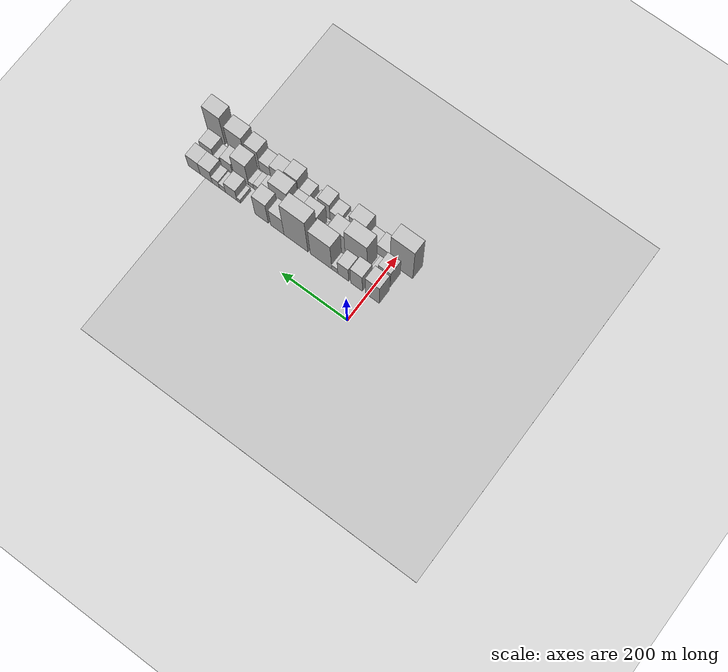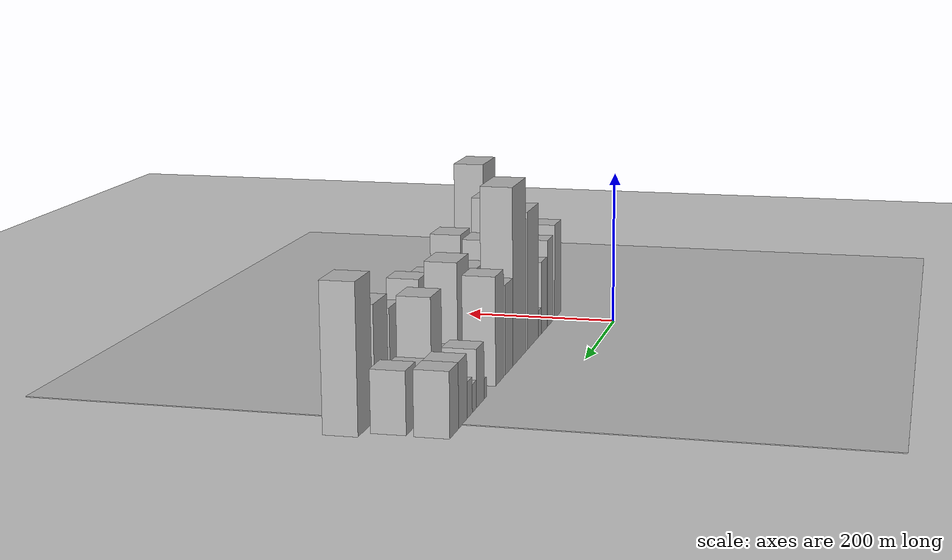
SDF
<sdf version="1.6">
 <world name="default">
  <include><name>ground_plane_1</name><uri>model://HANNAS_ground_plane</uri></include>
  <include>
   <name>ground_plane_2</name>
   <uri>model://HANNAS_ground_plane</uri>
   <pose>100 0 0  0 0 0</pose>
  </include>
  <model name="building_15">
   <static>1</static>
   <pose>100.0000 -14.3480 0 0.000000 0.000000 0.000000</pose>
   <link name="link">
    <pose>0 0 64.50 0 0 0</pose>
    <collision name="collision"><geometry><box><size>40.0000 42.0374 129.0000</size></box></geometry></collision>
    <visual name="visual">
     <cast_shadows>0</cast_shadows>
     <geometry><box><size>40.0000 42.0374 129.0000</size></box></geometry>
     <material>
      <script>
       <uri>model://HANNAS_wall/materials/scripts</uri>
       <uri>model://HANNAS_wall/materials/textures</uri>
       <name>vrc/HANNAS_wall</name>
      </script>
     </material>
    </visual>
   </link>
  </model>
  <model name="building_16">
   <static>1</static>
   <pose>100.0000 33.4773 0 0.000000 0.000000 0.000000</pose>
   <link name="link">
    <pose>0 0 58.50 0 0 0</pose>
    <collision name="collision"><geometry><box><size>40.0000 35.6132 117.0000</size></box></geometry></collision>
    <visual name="visual">
     <cast_shadows>0</cast_shadows>
     <geometry><box><size>40.0000 35.6132 117.0000</size></box></geometry>
     <material>
      <script>
       <uri>model://HANNAS_wall/materials/scripts</uri>
       <uri>model://HANNAS_wall/materials/textures</uri>
       <name>vrc/HANNAS_wall</name>
      </script>
     </material>
    </visual>
   </link>
  </model>
  <model name="building_17">
   <static>1</static>
   <pose>100.0000 73.7126 0 0.000000 0.000000 0.000000</pose>
   <link name="link">
    <pose>0 0 48.00 0 0 0</pose>
    <collision name="collision"><geometry><box><size>40.0000 32.8575 96.0000</size></box></geometry></collision>
    <visual name="visual">
     <cast_shadows>0</cast_shadows>
     <geometry><box><size>40.0000 32.8575 96.0000</size></box></geometry>
     <material>
      <script>
       <uri>model://HANNAS_wall/materials/scripts</uri>
       <uri>model://HANNAS_wall/materials/textures</uri>
       <name>vrc/HANNAS_wall</name>
      </script>
     </material>
    </visual>
   </link>
  </model>
  <model name="building_18">
   <static>1</static>
   <pose>100.0000 99.3036 0 0.000000 0.000000 0.000000</pose>
   <link name="link">
    <pose>0 0 18.00 0 0 0</pose>
    <collision name="collision"><geometry><box><size>40.0000 18.3245 36.0000</size></box></geometry></collision>
    <visual name="visual">
     <cast_shadows>0</cast_shadows>
     <geometry><box><size>40.0000 18.3245 36.0000</size></box></geometry>
     <material>
      <script>
       <uri>model://HANNAS_wall/materials/scripts</uri>
       <uri>model://HANNAS_wall/materials/textures</uri>
       <name>vrc/HANNAS_wall</name>
      </script>
     </material>
    </visual>
   </link>
  </model>
  <model name="building_19">
   <static>1</static>
   <pose>100.0000 141.2515 0 0.000000 0.000000 0.000000</pose>
   <link name="link">
    <pose>0 0 88.50 0 0 0</pose>
    <collision name="collision"><geometry><box><size>40.0000 65.5714 177.0000</size></box></geometry></collision>
    <visual name="visual">
     <cast_shadows>0</cast_shadows>
     <geometry><box><size>40.0000 65.5714 177.0000</size></box></geometry>
     <material>
      <script>
       <uri>model://HANNAS_wall/materials/scripts</uri>
       <uri>model://HANNAS_wall/materials/textures</uri>
       <name>vrc/HANNAS_wall</name>
      </script>
     </material>
    </visual>
   </link>
  </model>
  <model name="building_20">
   <static>1</static>
   <pose>100.0000 217.8878 0 0.000000 0.000000 0.000000</pose>
   <link name="link">
    <pose>0 0 111.00 0 0 0</pose>
    <collision name="collision"><geometry><box><size>40.0000 73.7011 222.0000</size></box></geometry></collision>
    <visual name="visual">
     <cast_shadows>0</cast_shadows>
     <geometry><box><size>40.0000 73.7011 222.0000</size></box></geometry>
     <material>
      <script>
       <uri>model://HANNAS_wall/materials/scripts</uri>
       <uri>model://HANNAS_wall/materials/textures</uri>
       <name>vrc/HANNAS_wall</name>
      </script>
     </material>
    </visual>
   </link>
  </model>
  <model name="building_21">
   <static>1</static>
   <pose>100.0000 275.3792 0 0.000000 0.000000 0.000000</pose>
   <link name="link">
    <pose>0 0 55.50 0 0 0</pose>
    <collision name="collision"><geometry><box><size>40.0000 41.2819 111.0000</size></box></geometry></collision>
    <visual name="visual">
     <cast_shadows>0</cast_shadows>
     <geometry><box><size>40.0000 41.2819 111.0000</size></box></geometry>
     <material>
      <script>
       <uri>model://HANNAS_wall/materials/scripts</uri>
       <uri>model://HANNAS_wall/materials/textures</uri>
       <name>vrc/HANNAS_wall</name>
      </script>
     </material>
    </visual>
   </link>
  </model>
  <model name="building_22">
   <static>1</static>
   <pose>100.0000 323.8332 0 0.000000 0.000000 0.000000</pose>
   <link name="link">
    <pose>0 0 66.00 0 0 0</pose>
    <collision name="collision"><geometry><box><size>40.0000 41.6261 132.0000</size></box></geometry></collision>
    <visual name="visual">
     <cast_shadows>0</cast_shadows>
     <geometry><box><size>40.0000 41.6261 132.0000</size></box></geometry>
     <material>
      <script>
       <uri>model://HANNAS_wall/materials/scripts</uri>
       <uri>model://HANNAS_wall/materials/textures</uri>
       <name>vrc/HANNAS_wall</name>
      </script>
     </material>
    </visual>
   </link>
  </model>
  <model name="building_23">
   <static>1</static>
   <pose>100.0000 394.9976 0 0.000000 0.000000 0.000000</pose>
   <link name="link">
    <pose>0 0 12.00 0 0 0</pose>
    <collision name="collision"><geometry><box><size>40.0000 11.5676 24.0000</size></box></geometry></collision>
    <visual name="visual">
     <cast_shadows>0</cast_shadows>
     <geometry><box><size>40.0000 11.5676 24.0000</size></box></geometry>
     <material>
      <script>
       <uri>model://HANNAS_wall/materials/scripts</uri>
       <uri>model://HANNAS_wall/materials/textures</uri>
       <name>vrc/HANNAS_wall</name>
      </script>
     </material>
    </visual>
   </link>
  </model>
  <model name="building_24">
   <static>1</static>
   <pose>100.0000 418.7170 0 0.000000 0.000000 0.000000</pose>
   <link name="link">
    <pose>0 0 34.50 0 0 0</pose>
    <collision name="collision"><geometry><box><size>40.0000 35.8713 69.0000</size></box></geometry></collision>
    <visual name="visual">
     <cast_shadows>0</cast_shadows>
     <geometry><box><size>40.0000 35.8713 69.0000</size></box></geometry>
     <material>
      <script>
       <uri>model://HANNAS_wall/materials/scripts</uri>
       <uri>model://HANNAS_wall/materials/textures</uri>
       <name>vrc/HANNAS_wall</name>
      </script>
     </material>
    </visual>
   </link>
  </model>
  <model name="building_25">
   <static>1</static>
   <pose>100.0000 446.3657 0 0.000000 0.000000 0.000000</pose>
   <link name="link">
    <pose>0 0 16.50 0 0 0</pose>
    <collision name="collision"><geometry><box><size>40.0000 19.4260 33.0000</size></box></geometry></collision>
    <visual name="visual">
     <cast_shadows>0</cast_shadows>
     <geometry><box><size>40.0000 19.4260 33.0000</size></box></geometry>
     <material>
      <script>
       <uri>model://HANNAS_wall/materials/scripts</uri>
       <uri>model://HANNAS_wall/materials/textures</uri>
       <name>vrc/HANNAS_wall</name>
      </script>
     </material>
    </visual>
   </link>
  </model>
  <model name="building_26">
   <static>1</static>
   <pose>100.0000 467.3186 0 0.000000 0.000000 0.000000</pose>
   <link name="link">
    <pose>0 0 21.00 0 0 0</pose>
    <collision name="collision"><geometry><box><size>40.0000 22.4799 42.0000</size></box></geometry></collision>
    <visual name="visual">
     <cast_shadows>0</cast_shadows>
     <geometry><box><size>40.0000 22.4799 42.0000</size></box></geometry>
     <material>
      <script>
       <uri>model://HANNAS_wall/materials/scripts</uri>
       <uri>model://HANNAS_wall/materials/textures</uri>
       <name>vrc/HANNAS_wall</name>
      </script>
     </material>
    </visual>
   </link>
  </model>
  <model name="building_27">
   <static>1</static>
   <pose>100.0000 497.3956 0 0.000000 0.000000 0.000000</pose>
   <link name="link">
    <pose>0 0 37.50 0 0 0</pose>
    <collision name="collision"><geometry><box><size>40.0000 37.6741 75.0000</size></box></geometry></collision>
    <visual name="visual">
     <cast_shadows>0</cast_shadows>
     <geometry><box><size>40.0000 37.6741 75.0000</size></box></geometry>
     <material>
      <script>
       <uri>model://HANNAS_wall/materials/scripts</uri>
       <uri>model://HANNAS_wall/materials/textures</uri>
       <name>vrc/HANNAS_wall</name>
      </script>
     </material>
    </visual>
   </link>
  </model>
  <model name="building_28">
   <static>1</static>
   <pose>100.0000 535.1315 0 0.000000 0.000000 0.000000</pose>
   <link name="link">
    <pose>0 0 37.50 0 0 0</pose>
    <collision name="collision"><geometry><box><size>40.0000 37.7977 75.0000</size></box></geometry></collision>
    <visual name="visual">
     <cast_shadows>0</cast_shadows>
     <geometry><box><size>40.0000 37.7977 75.0000</size></box></geometry>
     <material>
      <script>
       <uri>model://HANNAS_wall/materials/scripts</uri>
       <uri>model://HANNAS_wall/materials/textures</uri>
       <name>vrc/HANNAS_wall</name>
      </script>
     </material>
    </visual>
   </link>
  </model>
  <model name="building_42">
   <static>1</static>
   <pose>149.0000 -13.1731 0 0.000000 0.000000 0.000000</pose>
   <link name="link">
    <pose>0 0 55.50 0 0 0</pose>
    <collision name="collision"><geometry><box><size>40.0000 37.3592 111.0000</size></box></geometry></collision>
    <visual name="visual">
     <cast_shadows>0</cast_shadows>
     <geometry><box><size>40.0000 37.3592 111.0000</size></box></geometry>
     <material>
      <script>
       <uri>model://HANNAS_wall/materials/scripts</uri>
       <uri>model://HANNAS_wall/materials/textures</uri>
       <name>vrc/HANNAS_wall</name>
      </script>
     </material>
    </visual>
   </link>
  </model>
  <model name="building_43">
   <static>1</static>
   <pose>149.0000 16.8744 0 0.000000 0.000000 0.000000</pose>
   <link name="link">
    <pose>0 0 19.50 0 0 0</pose>
    <collision name="collision"><geometry><box><size>40.0000 22.7358 39.0000</size></box></geometry></collision>
    <visual name="visual">
     <cast_shadows>0</cast_shadows>
     <geometry><box><size>40.0000 22.7358 39.0000</size></box></geometry>
     <material>
      <script>
       <uri>model://HANNAS_wall/materials/scripts</uri>
       <uri>model://HANNAS_wall/materials/textures</uri>
       <name>vrc/HANNAS_wall</name>
      </script>
     </material>
    </visual>
   </link>
  </model>
  <model name="building_44">
   <static>1</static>
   <pose>149.0000 71.7519 0 0.000000 0.000000 0.000000</pose>
   <link name="link">
    <pose>0 0 90.00 0 0 0</pose>
    <collision name="collision"><geometry><box><size>40.0000 67.0192 180.0000</size></box></geometry></collision>
    <visual name="visual">
     <cast_shadows>0</cast_shadows>
     <geometry><box><size>40.0000 67.0192 180.0000</size></box></geometry>
     <material>
      <script>
       <uri>model://HANNAS_wall/materials/scripts</uri>
       <uri>model://HANNAS_wall/materials/textures</uri>
       <name>vrc/HANNAS_wall</name>
      </script>
     </material>
    </visual>
   </link>
  </model>
  <model name="building_45">
   <static>1</static>
   <pose>149.0000 129.6955 0 0.000000 0.000000 0.000000</pose>
   <link name="link">
    <pose>0 0 67.50 0 0 0</pose>
    <collision name="collision"><geometry><box><size>40.0000 48.8680 135.0000</size></box></geometry></collision>
    <visual name="visual">
     <cast_shadows>0</cast_shadows>
     <geometry><box><size>40.0000 48.8680 135.0000</size></box></geometry>
     <material>
      <script>
       <uri>model://HANNAS_wall/materials/scripts</uri>
       <uri>model://HANNAS_wall/materials/textures</uri>
       <name>vrc/HANNAS_wall</name>
      </script>
     </material>
    </visual>
   </link>
  </model>
  <model name="building_46">
   <static>1</static>
   <pose>149.0000 167.6514 0 0.000000 0.000000 0.000000</pose>
   <link name="link">
    <pose>0 0 18.00 0 0 0</pose>
    <collision name="collision"><geometry><box><size>40.0000 19.0437 36.0000</size></box></geometry></collision>
    <visual name="visual">
     <cast_shadows>0</cast_shadows>
     <geometry><box><size>40.0000 19.0437 36.0000</size></box></geometry>
     <material>
      <script>
       <uri>model://HANNAS_wall/materials/scripts</uri>
       <uri>model://HANNAS_wall/materials/textures</uri>
       <name>vrc/HANNAS_wall</name>
      </script>
     </material>
    </visual>
   </link>
  </model>
  <model name="building_47">
   <static>1</static>
   <pose>149.0000 180.9739 0 0.000000 0.000000 0.000000</pose>
   <link name="link">
    <pose>0 0 9.00 0 0 0</pose>
    <collision name="collision"><geometry><box><size>40.0000 7.6014 18.0000</size></box></geometry></collision>
    <visual name="visual">
     <cast_shadows>0</cast_shadows>
     <geometry><box><size>40.0000 7.6014 18.0000</size></box></geometry>
     <material>
      <script>
       <uri>model://HANNAS_wall/materials/scripts</uri>
       <uri>model://HANNAS_wall/materials/textures</uri>
       <name>vrc/HANNAS_wall</name>
      </script>
     </material>
    </visual>
   </link>
  </model>
  <model name="building_48">
   <static>1</static>
   <pose>149.0000 214.1277 0 0.000000 0.000000 0.000000</pose>
   <link name="link">
    <pose>0 0 58.50 0 0 0</pose>
    <collision name="collision"><geometry><box><size>40.0000 46.7060 117.0000</size></box></geometry></collision>
    <visual name="visual">
     <cast_shadows>0</cast_shadows>
     <geometry><box><size>40.0000 46.7060 117.0000</size></box></geometry>
     <material>
      <script>
       <uri>model://HANNAS_wall/materials/scripts</uri>
       <uri>model://HANNAS_wall/materials/textures</uri>
       <name>vrc/HANNAS_wall</name>
      </script>
     </material>
    </visual>
   </link>
  </model>
  <model name="building_49">
   <static>1</static>
   <pose>149.0000 255.0608 0 0.000000 0.000000 0.000000</pose>
   <link name="link">
    <pose>0 0 54.00 0 0 0</pose>
    <collision name="collision"><geometry><box><size>40.0000 35.1603 108.0000</size></box></geometry></collision>
    <visual name="visual">
     <cast_shadows>0</cast_shadows>
     <geometry><box><size>40.0000 35.1603 108.0000</size></box></geometry>
     <material>
      <script>
       <uri>model://HANNAS_wall/materials/scripts</uri>
       <uri>model://HANNAS_wall/materials/textures</uri>
       <name>vrc/HANNAS_wall</name>
      </script>
     </material>
    </visual>
   </link>
  </model>
  <model name="building_50">
   <static>1</static>
   <pose>149.0000 305.0696 0 0.000000 0.000000 0.000000</pose>
   <link name="link">
    <pose>0 0 72.00 0 0 0</pose>
    <collision name="collision"><geometry><box><size>40.0000 54.8574 144.0000</size></box></geometry></collision>
    <visual name="visual">
     <cast_shadows>0</cast_shadows>
     <geometry><box><size>40.0000 54.8574 144.0000</size></box></geometry>
     <material>
      <script>
       <uri>model://HANNAS_wall/materials/scripts</uri>
       <uri>model://HANNAS_wall/materials/textures</uri>
       <name>vrc/HANNAS_wall</name>
      </script>
     </material>
    </visual>
   </link>
  </model>
  <model name="building_51">
   <static>1</static>
   <pose>149.0000 354.5648 0 0.000000 0.000000 0.000000</pose>
   <link name="link">
    <pose>0 0 24.00 0 0 0</pose>
    <collision name="collision"><geometry><box><size>40.0000 28.1330 48.0000</size></box></geometry></collision>
    <visual name="visual">
     <cast_shadows>0</cast_shadows>
     <geometry><box><size>40.0000 28.1330 48.0000</size></box></geometry>
     <material>
      <script>
       <uri>model://HANNAS_wall/materials/scripts</uri>
       <uri>model://HANNAS_wall/materials/textures</uri>
       <name>vrc/HANNAS_wall</name>
      </script>
     </material>
    </visual>
   </link>
  </model>
  <model name="building_52">
   <static>1</static>
   <pose>149.0000 377.9350 0 0.000000 0.000000 0.000000</pose>
   <link name="link">
    <pose>0 0 18.00 0 0 0</pose>
    <collision name="collision"><geometry><box><size>40.0000 18.6073 36.0000</size></box></geometry></collision>
    <visual name="visual">
     <cast_shadows>0</cast_shadows>
     <geometry><box><size>40.0000 18.6073 36.0000</size></box></geometry>
     <material>
      <script>
       <uri>model://HANNAS_wall/materials/scripts</uri>
       <uri>model://HANNAS_wall/materials/textures</uri>
       <name>vrc/HANNAS_wall</name>
      </script>
     </material>
    </visual>
   </link>
  </model>
  <model name="building_53">
   <static>1</static>
   <pose>149.0000 395.2070 0 0.000000 0.000000 0.000000</pose>
   <link name="link">
    <pose>0 0 15.00 0 0 0</pose>
    <collision name="collision"><geometry><box><size>40.0000 15.9366 30.0000</size></box></geometry></collision>
    <visual name="visual">
     <cast_shadows>0</cast_shadows>
     <geometry><box><size>40.0000 15.9366 30.0000</size></box></geometry>
     <material>
      <script>
       <uri>model://HANNAS_wall/materials/scripts</uri>
       <uri>model://HANNAS_wall/materials/textures</uri>
       <name>vrc/HANNAS_wall</name>
      </script>
     </material>
    </visual>
   </link>
  </model>
  <model name="building_54">
   <static>1</static>
   <pose>149.0000 426.0396 0 0.000000 0.000000 0.000000</pose>
   <link name="link">
    <pose>0 0 64.50 0 0 0</pose>
    <collision name="collision"><geometry><box><size>40.0000 45.7287 129.0000</size></box></geometry></collision>
    <visual name="visual">
     <cast_shadows>0</cast_shadows>
     <geometry><box><size>40.0000 45.7287 129.0000</size></box></geometry>
     <material>
      <script>
       <uri>model://HANNAS_wall/materials/scripts</uri>
       <uri>model://HANNAS_wall/materials/textures</uri>
       <name>vrc/HANNAS_wall</name>
      </script>
     </material>
    </visual>
   </link>
  </model>
  <model name="building_55">
   <static>1</static>
   <pose>149.0000 470.8617 0 0.000000 0.000000 0.000000</pose>
   <link name="link">
    <pose>0 0 30.00 0 0 0</pose>
    <collision name="collision"><geometry><box><size>40.0000 33.9155 60.0000</size></box></geometry></collision>
    <visual name="visual">
     <cast_shadows>0</cast_shadows>
     <geometry><box><size>40.0000 33.9155 60.0000</size></box></geometry>
     <material>
      <script>
       <uri>model://HANNAS_wall/materials/scripts</uri>
       <uri>model://HANNAS_wall/materials/textures</uri>
       <name>vrc/HANNAS_wall</name>
      </script>
     </material>
    </visual>
   </link>
  </model>
  <model name="building_56">
   <static>1</static>
   <pose>149.0000 504.5062 0 0.000000 0.000000 0.000000</pose>
   <link name="link">
    <pose>0 0 15.00 0 0 0</pose>
    <collision name="collision"><geometry><box><size>40.0000 15.3734 30.0000</size></box></geometry></collision>
    <visual name="visual">
     <cast_shadows>0</cast_shadows>
     <geometry><box><size>40.0000 15.3734 30.0000</size></box></geometry>
     <material>
      <script>
       <uri>model://HANNAS_wall/materials/scripts</uri>
       <uri>model://HANNAS_wall/materials/textures</uri>
       <name>vrc/HANNAS_wall</name>
      </script>
     </material>
    </visual>
   </link>
  </model>
  <model name="building_57">
   <static>1</static>
   <pose>149.0000 532.1207 0 0.000000 0.000000 0.000000</pose>
   <link name="link">
    <pose>0 0 36.00 0 0 0</pose>
    <collision name="collision"><geometry><box><size>40.0000 39.8557 72.0000</size></box></geometry></collision>
    <visual name="visual">
     <cast_shadows>0</cast_shadows>
     <geometry><box><size>40.0000 39.8557 72.0000</size></box></geometry>
     <material>
      <script>
       <uri>model://HANNAS_wall/materials/scripts</uri>
       <uri>model://HANNAS_wall/materials/textures</uri>
       <name>vrc/HANNAS_wall</name>
      </script>
     </material>
    </visual>
   </link>
  </model>
  <model name="building_77">
   <static>1</static>
   <pose>198.0000 -28.6502 0 0.000000 0.000000 0.000000</pose>
   <link name="link">
    <pose>0 0 103.50 0 0 0</pose>
    <collision name="collision"><geometry><box><size>40.0000 68.6095 207.0000</size></box></geometry></collision>
    <visual name="visual">
     <cast_shadows>0</cast_shadows>
     <geometry><box><size>40.0000 68.6095 207.0000</size></box></geometry>
     <material>
      <script>
       <uri>model://HANNAS_wall/materials/scripts</uri>
       <uri>model://HANNAS_wall/materials/textures</uri>
       <name>vrc/HANNAS_wall</name>
      </script>
     </material>
    </visual>
   </link>
  </model>
  <model name="building_78">
   <static>1</static>
   <pose>198.0000 25.9451 0 0.000000 0.000000 0.000000</pose>
   <link name="link">
    <pose>0 0 34.50 0 0 0</pose>
    <collision name="collision"><geometry><box><size>40.0000 40.5810 69.0000</size></box></geometry></collision>
    <visual name="visual">
     <cast_shadows>0</cast_shadows>
     <geometry><box><size>40.0000 40.5810 69.0000</size></box></geometry>
     <material>
      <script>
       <uri>model://HANNAS_wall/materials/scripts</uri>
       <uri>model://HANNAS_wall/materials/textures</uri>
       <name>vrc/HANNAS_wall</name>
      </script>
     </material>
    </visual>
   </link>
  </model>
  <model name="building_79">
   <static>1</static>
   <pose>198.0000 62.6941 0 0.000000 0.000000 0.000000</pose>
   <link name="link">
    <pose>0 0 28.50 0 0 0</pose>
    <collision name="collision"><geometry><box><size>40.0000 32.9170 57.0000</size></box></geometry></collision>
    <visual name="visual">
     <cast_shadows>0</cast_shadows>
     <geometry><box><size>40.0000 32.9170 57.0000</size></box></geometry>
     <material>
      <script>
       <uri>model://HANNAS_wall/materials/scripts</uri>
       <uri>model://HANNAS_wall/materials/textures</uri>
       <name>vrc/HANNAS_wall</name>
      </script>
     </material>
    </visual>
   </link>
  </model>
  <model name="building_80">
   <static>1</static>
   <pose>198.0000 103.7721 0 0.000000 0.000000 0.000000</pose>
   <link name="link">
    <pose>0 0 67.50 0 0 0</pose>
    <collision name="collision"><geometry><box><size>40.0000 49.2389 135.0000</size></box></geometry></collision>
    <visual name="visual">
     <cast_shadows>0</cast_shadows>
     <geometry><box><size>40.0000 49.2389 135.0000</size></box></geometry>
     <material>
      <script>
       <uri>model://HANNAS_wall/materials/scripts</uri>
       <uri>model://HANNAS_wall/materials/textures</uri>
       <name>vrc/HANNAS_wall</name>
      </script>
     </material>
    </visual>
   </link>
  </model>
  <model name="building_81">
   <static>1</static>
   <pose>198.0000 145.4336 0 0.000000 0.000000 0.000000</pose>
   <link name="link">
    <pose>0 0 16.50 0 0 0</pose>
    <collision name="collision"><geometry><box><size>40.0000 18.0842 33.0000</size></box></geometry></collision>
    <visual name="visual">
     <cast_shadows>0</cast_shadows>
     <geometry><box><size>40.0000 18.0842 33.0000</size></box></geometry>
     <material>
      <script>
       <uri>model://HANNAS_wall/materials/scripts</uri>
       <uri>model://HANNAS_wall/materials/textures</uri>
       <name>vrc/HANNAS_wall</name>
      </script>
     </material>
    </visual>
   </link>
  </model>
  <model name="building_82">
   <static>1</static>
   <pose>198.0000 171.2136 0 0.000000 0.000000 0.000000</pose>
   <link name="link">
    <pose>0 0 33.00 0 0 0</pose>
    <collision name="collision"><geometry><box><size>40.0000 33.4758 66.0000</size></box></geometry></collision>
    <visual name="visual">
     <cast_shadows>0</cast_shadows>
     <geometry><box><size>40.0000 33.4758 66.0000</size></box></geometry>
     <material>
      <script>
       <uri>model://HANNAS_wall/materials/scripts</uri>
       <uri>model://HANNAS_wall/materials/textures</uri>
       <name>vrc/HANNAS_wall</name>
      </script>
     </material>
    </visual>
   </link>
  </model>
  <model name="building_83">
   <static>1</static>
   <pose>198.0000 205.5938 0 0.000000 0.000000 0.000000</pose>
   <link name="link">
    <pose>0 0 52.50 0 0 0</pose>
    <collision name="collision"><geometry><box><size>40.0000 35.2846 105.0000</size></box></geometry></collision>
    <visual name="visual">
     <cast_shadows>0</cast_shadows>
     <geometry><box><size>40.0000 35.2846 105.0000</size></box></geometry>
     <material>
      <script>
       <uri>model://HANNAS_wall/materials/scripts</uri>
       <uri>model://HANNAS_wall/materials/textures</uri>
       <name>vrc/HANNAS_wall</name>
      </script>
     </material>
    </visual>
   </link>
  </model>
  <model name="building_84">
   <static>1</static>
   <pose>198.0000 233.7788 0 0.000000 0.000000 0.000000</pose>
   <link name="link">
    <pose>0 0 18.00 0 0 0</pose>
    <collision name="collision"><geometry><box><size>40.0000 21.0855 36.0000</size></box></geometry></collision>
    <visual name="visual">
     <cast_shadows>0</cast_shadows>
     <geometry><box><size>40.0000 21.0855 36.0000</size></box></geometry>
     <material>
      <script>
       <uri>model://HANNAS_wall/materials/scripts</uri>
       <uri>model://HANNAS_wall/materials/textures</uri>
       <name>vrc/HANNAS_wall</name>
      </script>
     </material>
    </visual>
   </link>
  </model>
  <model name="building_85">
   <static>1</static>
   <pose>198.0000 268.3736 0 0.000000 0.000000 0.000000</pose>
   <link name="link">
    <pose>0 0 27.00 0 0 0</pose>
    <collision name="collision"><geometry><box><size>40.0000 32.1041 54.0000</size></box></geometry></collision>
    <visual name="visual">
     <cast_shadows>0</cast_shadows>
     <geometry><box><size>40.0000 32.1041 54.0000</size></box></geometry>
     <material>
      <script>
       <uri>model://HANNAS_wall/materials/scripts</uri>
       <uri>model://HANNAS_wall/materials/textures</uri>
       <name>vrc/HANNAS_wall</name>
      </script>
     </material>
    </visual>
   </link>
  </model>
  <model name="building_86">
   <static>1</static>
   <pose>198.0000 304.4488 0 0.000000 0.000000 0.000000</pose>
   <link name="link">
    <pose>0 0 60.00 0 0 0</pose>
    <collision name="collision"><geometry><box><size>40.0000 40.0464 120.0000</size></box></geometry></collision>
    <visual name="visual">
     <cast_shadows>0</cast_shadows>
     <geometry><box><size>40.0000 40.0464 120.0000</size></box></geometry>
     <material>
      <script>
       <uri>model://HANNAS_wall/materials/scripts</uri>
       <uri>model://HANNAS_wall/materials/textures</uri>
       <name>vrc/HANNAS_wall</name>
      </script>
     </material>
    </visual>
   </link>
  </model>
  <model name="building_87">
   <static>1</static>
   <pose>198.0000 348.1931 0 0.000000 0.000000 0.000000</pose>
   <link name="link">
    <pose>0 0 40.50 0 0 0</pose>
    <collision name="collision"><geometry><box><size>40.0000 47.4421 81.0000</size></box></geometry></collision>
    <visual name="visual">
     <cast_shadows>0</cast_shadows>
     <geometry><box><size>40.0000 47.4421 81.0000</size></box></geometry>
     <material>
      <script>
       <uri>model://HANNAS_wall/materials/scripts</uri>
       <uri>model://HANNAS_wall/materials/textures</uri>
       <name>vrc/HANNAS_wall</name>
      </script>
     </material>
    </visual>
   </link>
  </model>
  <model name="building_88">
   <static>1</static>
   <pose>198.0000 389.4677 0 0.000000 0.000000 0.000000</pose>
   <link name="link">
    <pose>0 0 31.50 0 0 0</pose>
    <collision name="collision"><geometry><box><size>40.0000 35.1073 63.0000</size></box></geometry></collision>
    <visual name="visual">
     <cast_shadows>0</cast_shadows>
     <geometry><box><size>40.0000 35.1073 63.0000</size></box></geometry>
     <material>
      <script>
       <uri>model://HANNAS_wall/materials/scripts</uri>
       <uri>model://HANNAS_wall/materials/textures</uri>
       <name>vrc/HANNAS_wall</name>
      </script>
     </material>
    </visual>
   </link>
  </model>
  <model name="building_89">
   <static>1</static>
   <pose>198.0000 426.8065 0 0.000000 0.000000 0.000000</pose>
   <link name="link">
    <pose>0 0 57.00 0 0 0</pose>
    <collision name="collision"><geometry><box><size>40.0000 39.5702 114.0000</size></box></geometry></collision>
    <visual name="visual">
     <cast_shadows>0</cast_shadows>
     <geometry><box><size>40.0000 39.5702 114.0000</size></box></geometry>
     <material>
      <script>
       <uri>model://HANNAS_wall/materials/scripts</uri>
       <uri>model://HANNAS_wall/materials/textures</uri>
       <name>vrc/HANNAS_wall</name>
      </script>
     </material>
    </visual>
   </link>
  </model>
  <model name="building_90">
   <static>1</static>
   <pose>198.0000 479.9417 0 0.000000 0.000000 0.000000</pose>
   <link name="link">
    <pose>0 0 66.00 0 0 0</pose>
    <collision name="collision"><geometry><box><size>40.0000 52.7002 132.0000</size></box></geometry></collision>
    <visual name="visual">
     <cast_shadows>0</cast_shadows>
     <geometry><box><size>40.0000 52.7002 132.0000</size></box></geometry>
     <material>
      <script>
       <uri>model://HANNAS_wall/materials/scripts</uri>
       <uri>model://HANNAS_wall/materials/textures</uri>
       <name>vrc/HANNAS_wall</name>
      </script>
     </material>
    </visual>
   </link>
  </model>
  <model name="building_91">
   <static>1</static>
   <pose>198.0000 541.7616 0 0.000000 0.000000 0.000000</pose>
   <link name="link">
    <pose>0 0 85.50 0 0 0</pose>
    <collision name="collision"><geometry><box><size>40.0000 52.9396 171.0000</size></box></geometry></collision>
    <visual name="visual">
     <cast_shadows>0</cast_shadows>
     <geometry><box><size>40.0000 52.9396 171.0000</size></box></geometry>
     <material>
      <script>
       <uri>model://HANNAS_wall/materials/scripts</uri>
       <uri>model://HANNAS_wall/materials/textures</uri>
       <name>vrc/HANNAS_wall</name>
      </script>
     </material>
    </visual>
   </link>
  </model>
 </world>
</sdf>
